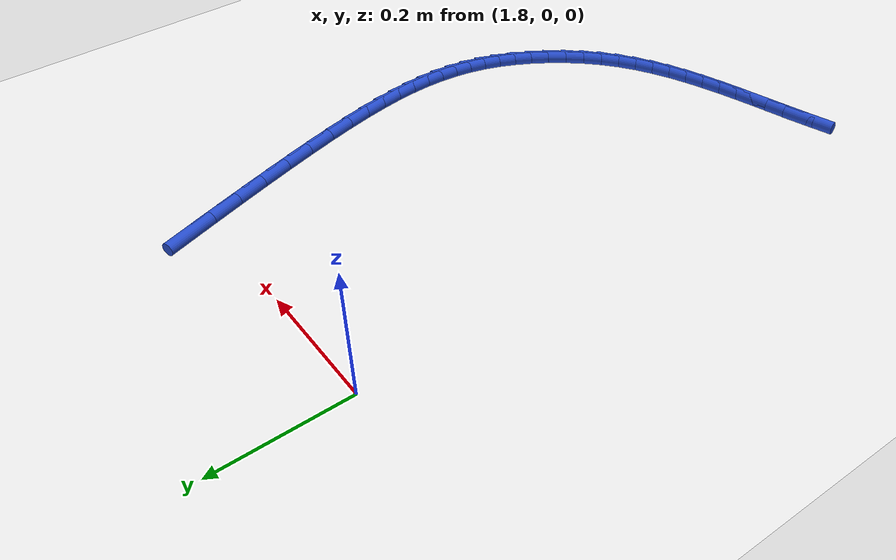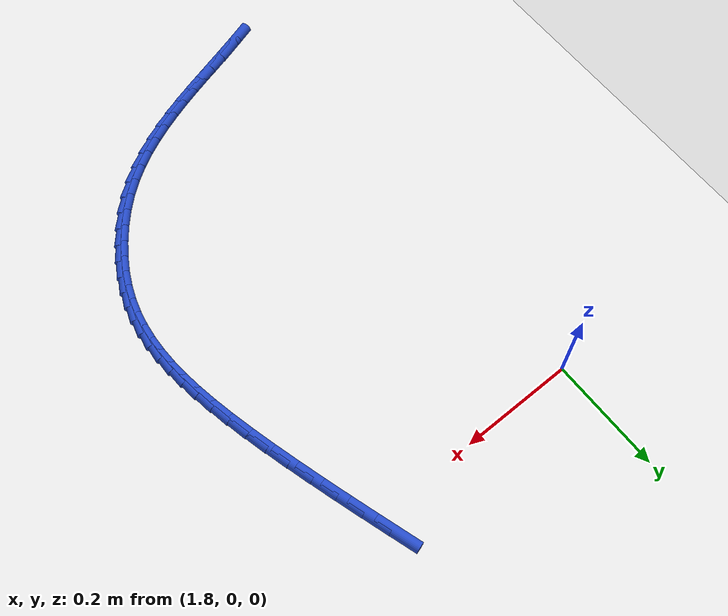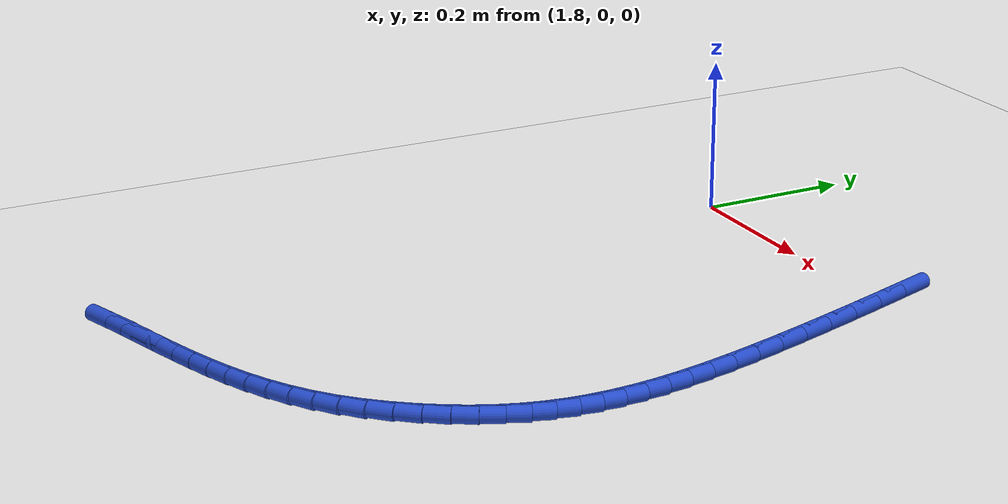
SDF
<sdf version="1.6">
 <world name="default">
  <model name="ground_plane">
   <static>1</static>
   <link name="link">
    <collision name="collision">
     <geometry><plane><normal>0 0 1</normal><size>100 100</size></plane></geometry>
     <surface><friction><ode><mu>100</mu><mu2>50</mu2></ode></friction></surface>
    </collision>
    <visual name="visual">
     <cast_shadows>0</cast_shadows>
     <geometry><plane><normal>0 0 1</normal><size>100 100</size></plane></geometry>
     <material>
      <script><uri>file://media/materials/scripts/gazebo.material</uri><name>Gazebo/WhiteGlow</name></script>
     </material>
    </visual>
   </link>
  </model>
  <model name="line">
   <link name="link_150">
    <pose>2.177378186438886 0.037771907014860565 0.01 0 1.57 -1.2565688783483167</pose>
    <collision name="collision">
     <geometry><cylinder><radius>0.01</radius><length>0.08</length></cylinder></geometry>
    </collision>
    <visual name="visual">
     <material>
      <script><name>Gazebo/Blue</name><uri>file://media/materials/scripts/gazebo.material</uri></script>
     </material>
     <geometry><cylinder><radius>0.01</radius><length>0.08</length></cylinder></geometry>
    </visual>
   </link>
   <link name="link_151">
    <pose>2.1927401477166435 -0.009496381822705638 0.01 0 1.57 -1.2625339412847834</pose>
    <collision name="collision">
     <geometry><cylinder><radius>0.01</radius><length>0.08</length></cylinder></geometry>
    </collision>
    <visual name="visual">
     <material>
      <script><name>Gazebo/Blue</name><uri>file://media/materials/scripts/gazebo.material</uri></script>
     </material>
     <geometry><cylinder><radius>0.01</radius><length>0.08</length></cylinder></geometry>
    </visual>
   </link>
   <link name="link_152">
    <pose>2.2076848268594134 -0.05643132222345608 0.01 0 1.57 -1.2699964345512602</pose>
    <collision name="collision">
     <geometry><cylinder><radius>0.01</radius><length>0.08</length></cylinder></geometry>
    </collision>
    <visual name="visual">
     <material>
      <script><name>Gazebo/Blue</name><uri>file://media/materials/scripts/gazebo.material</uri></script>
     </material>
     <geometry><cylinder><radius>0.01</radius><length>0.08</length></cylinder></geometry>
    </visual>
   </link>
   <link name="link_153">
    <pose>2.2219776159045135 -0.102505450847458 0.01 0 1.57 -1.2793285498213431</pose>
    <collision name="collision">
     <geometry><cylinder><radius>0.01</radius><length>0.08</length></cylinder></geometry>
    </collision>
    <visual name="visual">
     <material>
      <script><name>Gazebo/Blue</name><uri>file://media/materials/scripts/gazebo.material</uri></script>
     </material>
     <geometry><cylinder><radius>0.01</radius><length>0.08</length></cylinder></geometry>
    </visual>
   </link>
   <link name="link_154">
    <pose>2.2353839068892616 -0.1471913043547741 0.01 0 1.57 -1.2910888931422972</pose>
    <collision name="collision">
     <geometry><cylinder><radius>0.01</radius><length>0.08</length></cylinder></geometry>
    </collision>
    <visual name="visual">
     <material>
      <script><name>Gazebo/Blue</name><uri>file://media/materials/scripts/gazebo.material</uri></script>
     </material>
     <geometry><cylinder><radius>0.01</radius><length>0.08</length></cylinder></geometry>
    </visual>
   </link>
   <link name="link_155">
    <pose>2.2476690918509754 -0.18996141940546848 0.01 0 1.57 -1.3062080282308373</pose>
    <collision name="collision">
     <geometry><cylinder><radius>0.01</radius><length>0.08</length></cylinder></geometry>
    </collision>
    <visual name="visual">
     <material>
      <script><name>Gazebo/Blue</name><uri>file://media/materials/scripts/gazebo.material</uri></script>
     </material>
     <geometry><cylinder><radius>0.01</radius><length>0.08</length></cylinder></geometry>
    </visual>
   </link>
   <link name="link_156">
    <pose>2.258614735631049 -0.2303601065759916 0.01 0 1.57 -1.3262288701844052</pose>
    <collision name="collision">
     <geometry><cylinder><radius>0.01</radius><length>0.08</length></cylinder></geometry>
    </collision>
    <visual name="visual">
     <material>
      <script><name>Gazebo/Blue</name><uri>file://media/materials/scripts/gazebo.material</uri></script>
     </material>
     <geometry><cylinder><radius>0.01</radius><length>0.08</length></cylinder></geometry>
    </visual>
   </link>
   <link name="link_157">
    <pose>2.2681064382744607 -0.268393378320083 0.01 0 1.57 -1.3522229726255945</pose>
    <collision name="collision">
     <geometry><cylinder><radius>0.01</radius><length>0.08</length></cylinder></geometry>
    </collision>
    <visual name="visual">
     <material>
      <script><name>Gazebo/Blue</name><uri>file://media/materials/scripts/gazebo.material</uri></script>
     </material>
     <geometry><cylinder><radius>0.01</radius><length>0.08</length></cylinder></geometry>
    </visual>
   </link>
   <link name="link_158">
    <pose>2.276070989000401 -0.3042500421301174 0.01 0 1.57 -1.385054984742784</pose>
    <collision name="collision">
     <geometry><cylinder><radius>0.01</radius><length>0.08</length></cylinder></geometry>
    </collision>
    <visual name="visual">
     <material>
      <script><name>Gazebo/Blue</name><uri>file://media/materials/scripts/gazebo.material</uri></script>
     </material>
     <geometry><cylinder><radius>0.01</radius><length>0.08</length></cylinder></geometry>
    </visual>
   </link>
   <link name="link_159">
    <pose>2.2824352795492215 -0.33811936048110935 0.01 0 1.57 -1.4255604790030025</pose>
    <collision name="collision">
     <geometry><cylinder><radius>0.01</radius><length>0.08</length></cylinder></geometry>
    </collision>
    <visual name="visual">
     <material>
      <script><name>Gazebo/Blue</name><uri>file://media/materials/scripts/gazebo.material</uri></script>
     </material>
     <geometry><cylinder><radius>0.01</radius><length>0.08</length></cylinder></geometry>
    </visual>
   </link>
   <link name="link_160">
    <pose>2.287126201661272 -0.3701905958480727 0.01 0 1.57 -1.4744373652298832</pose>
    <collision name="collision">
     <geometry><cylinder><radius>0.01</radius><length>0.08</length></cylinder></geometry>
    </collision>
    <visual name="visual">
     <material>
      <script><name>Gazebo/Blue</name><uri>file://media/materials/scripts/gazebo.material</uri></script>
     </material>
     <geometry><cylinder><radius>0.01</radius><length>0.08</length></cylinder></geometry>
    </visual>
   </link>
   <link name="link_161">
    <pose>2.290070647076902 -0.40065301070602144 0.01 0 1.57 -1.5320846220062383</pose>
    <collision name="collision">
     <geometry><cylinder><radius>0.01</radius><length>0.08</length></cylinder></geometry>
    </collision>
    <visual name="visual">
     <material>
      <script><name>Gazebo/Blue</name><uri>file://media/materials/scripts/gazebo.material</uri></script>
     </material>
     <geometry><cylinder><radius>0.01</radius><length>0.08</length></cylinder></geometry>
    </visual>
   </link>
   <link name="link_162">
    <pose>2.2911955075364636 -0.42969586752997013 0.01 0 1.57 1.5431959283555121</pose>
    <collision name="collision">
     <geometry><cylinder><radius>0.01</radius><length>0.08</length></cylinder></geometry>
    </collision>
    <visual name="visual">
     <material>
      <script><name>Gazebo/Blue</name><uri>file://media/materials/scripts/gazebo.material</uri></script>
     </material>
     <geometry><cylinder><radius>0.01</radius><length>0.08</length></cylinder></geometry>
    </visual>
   </link>
   <link name="link_163">
    <pose>2.2904276747803056 -0.45750842879493264 0.01 0 1.57 1.4690392454744041</pose>
    <collision name="collision">
     <geometry><cylinder><radius>0.01</radius><length>0.08</length></cylinder></geometry>
    </collision>
    <visual name="visual">
     <material>
      <script><name>Gazebo/Blue</name><uri>file://media/materials/scripts/gazebo.material</uri></script>
     </material>
     <geometry><cylinder><radius>0.01</radius><length>0.08</length></cylinder></geometry>
    </visual>
   </link>
   <link name="link_164">
    <pose>2.287694040548779 -0.48427995697592313 0.01 0 1.57 1.3887081769607825</pose>
    <collision name="collision">
     <geometry><cylinder><radius>0.01</radius><length>0.08</length></cylinder></geometry>
    </collision>
    <visual name="visual">
     <material>
      <script><name>Gazebo/Blue</name><uri>file://media/materials/scripts/gazebo.material</uri></script>
     </material>
     <geometry><cylinder><radius>0.01</radius><length>0.08</length></cylinder></geometry>
    </visual>
   </link>
   <link name="link_165">
    <pose>2.2829214965822353 -0.5101997145479559 0.01 0 1.57 1.3046835374370898</pose>
    <collision name="collision">
     <geometry><cylinder><radius>0.01</radius><length>0.08</length></cylinder></geometry>
    </collision>
    <visual name="visual">
     <material>
      <script><name>Gazebo/Blue</name><uri>file://media/materials/scripts/gazebo.material</uri></script>
     </material>
     <geometry><cylinder><radius>0.01</radius><length>0.08</length></cylinder></geometry>
    </visual>
   </link>
   <link name="link_166">
    <pose>2.2760369346210236 -0.5354569639860448 0.01 0 1.57 1.219984052009317</pose>
    <collision name="collision">
     <geometry><cylinder><radius>0.01</radius><length>0.08</length></cylinder></geometry>
    </collision>
    <visual name="visual">
     <material>
      <script><name>Gazebo/Blue</name><uri>file://media/materials/scripts/gazebo.material</uri></script>
     </material>
     <geometry><cylinder><radius>0.01</radius><length>0.08</length></cylinder></geometry>
    </visual>
   </link>
   <link name="link_167">
    <pose>2.266967246405494 -0.5602409677652042 0.01 0 1.57 1.1377083603555451</pose>
    <collision name="collision">
     <geometry><cylinder><radius>0.01</radius><length>0.08</length></cylinder></geometry>
    </collision>
    <visual name="visual">
     <material>
      <script><name>Gazebo/Blue</name><uri>file://media/materials/scripts/gazebo.material</uri></script>
     </material>
     <geometry><cylinder><radius>0.01</radius><length>0.08</length></cylinder></geometry>
    </visual>
   </link>
   <link name="link_168">
    <pose>2.2556393236759975 -0.5847409883604482 0.01 0 1.57 1.060548293669689</pose>
    <collision name="collision">
     <geometry><cylinder><radius>0.01</radius><length>0.08</length></cylinder></geometry>
    </collision>
    <visual name="visual">
     <material>
      <script><name>Gazebo/Blue</name><uri>file://media/materials/scripts/gazebo.material</uri></script>
     </material>
     <geometry><cylinder><radius>0.01</radius><length>0.08</length></cylinder></geometry>
    </visual>
   </link>
   <link name="link_169">
    <pose>2.241980058467533 -0.6091462875438887 0.01 0 1.57 0.9895238570014566</pose>
    <collision name="collision">
     <geometry><cylinder><radius>0.01</radius><length>0.08</length></cylinder></geometry>
    </collision>
    <visual name="visual">
     <material>
      <script><name>Gazebo/Blue</name><uri>file://media/materials/scripts/gazebo.material</uri></script>
     </material>
     <geometry><cylinder><radius>0.01</radius><length>0.08</length></cylinder></geometry>
    </visual>
   </link>
   <link name="link_170">
    <pose>2.225973457447147 -0.6335098762969096 0.01 0 1.57 0.9203623868774888</pose>
    <collision name="collision">
     <geometry><cylinder><radius>0.01</radius><length>0.08</length></cylinder></geometry>
    </collision>
    <visual name="visual">
     <material>
      <script><name>Gazebo/Blue</name><uri>file://media/materials/scripts/gazebo.material</uri></script>
     </material>
     <geometry><cylinder><radius>0.01</radius><length>0.08</length></cylinder></geometry>
    </visual>
   </link>
   <link name="link_171">
    <pose>2.207820251549267 -0.6573677553052854 0.01 0 1.57 0.8487952375971233</pose>
    <collision name="collision">
     <geometry><cylinder><radius>0.01</radius><length>0.08</length></cylinder></geometry>
    </collision>
    <visual name="visual">
     <material>
      <script><name>Gazebo/Blue</name><uri>file://media/materials/scripts/gazebo.material</uri></script>
     </material>
     <geometry><cylinder><radius>0.01</radius><length>0.08</length></cylinder></geometry>
    </visual>
   </link>
   <link name="link_172">
    <pose>2.1877725684097804 -0.6801333149715065 0.01 0 1.57 0.7712932296858065</pose>
    <collision name="collision">
     <geometry><cylinder><radius>0.01</radius><length>0.08</length></cylinder></geometry>
    </collision>
    <visual name="visual">
     <material>
      <script><name>Gazebo/Blue</name><uri>file://media/materials/scripts/gazebo.material</uri></script>
     </material>
     <geometry><cylinder><radius>0.01</radius><length>0.08</length></cylinder></geometry>
    </visual>
   </link>
   <link name="link_173">
    <pose>2.166082535664577 -0.7012199456980642 0.01 0 1.57 0.6870396033574212</pose>
    <collision name="collision">
     <geometry><cylinder><radius>0.01</radius><length>0.08</length></cylinder></geometry>
    </collision>
    <visual name="visual">
     <material>
      <script><name>Gazebo/Blue</name><uri>file://media/materials/scripts/gazebo.material</uri></script>
     </material>
     <geometry><cylinder><radius>0.01</radius><length>0.08</length></cylinder></geometry>
    </visual>
   </link>
   <link name="link_174">
    <pose>2.142984954990692 -0.7201685371225521 0.01 0 1.57 0.6066689730056751</pose>
    <collision name="collision">
     <geometry><cylinder><radius>0.01</radius><length>0.08</length></cylinder></geometry>
    </collision>
    <visual name="visual">
     <material>
      <script><name>Gazebo/Blue</name><uri>file://media/materials/scripts/gazebo.material</uri></script>
     </material>
     <geometry><cylinder><radius>0.01</radius><length>0.08</length></cylinder></geometry>
    </visual>
   </link>
   <link name="link_175">
    <pose>2.118640884897826 -0.7370626442269977 0.01 0 1.57 0.5345644038278002</pose>
    <collision name="collision">
     <geometry><cylinder><radius>0.01</radius><length>0.08</length></cylinder></geometry>
    </collision>
    <visual name="visual">
     <material>
      <script><name>Gazebo/Blue</name><uri>file://media/materials/scripts/gazebo.material</uri></script>
     </material>
     <geometry><cylinder><radius>0.01</radius><length>0.08</length></cylinder></geometry>
    </visual>
   </link>
   <link name="link_176">
    <pose>2.093191768091067 -0.7521301718735717 0.01 0 1.57 0.4715664886628932</pose>
    <collision name="collision">
     <geometry><cylinder><radius>0.01</radius><length>0.08</length></cylinder></geometry>
    </collision>
    <visual name="visual">
     <material>
      <script><name>Gazebo/Blue</name><uri>file://media/materials/scripts/gazebo.material</uri></script>
     </material>
     <geometry><cylinder><radius>0.01</radius><length>0.08</length></cylinder></geometry>
    </visual>
   </link>
   <link name="link_177">
    <pose>2.0667790471120977 -0.7655990261269464 0.01 0 1.57 0.4180309841029311</pose>
    <collision name="collision">
     <geometry><cylinder><radius>0.01</radius><length>0.08</length></cylinder></geometry>
    </collision>
    <visual name="visual">
     <material>
      <script><name>Gazebo/Blue</name><uri>file://media/materials/scripts/gazebo.material</uri></script>
     </material>
     <geometry><cylinder><radius>0.01</radius><length>0.08</length></cylinder></geometry>
    </visual>
   </link>
   <link name="link_178">
    <pose>2.0395441645025967 -0.7776971130517943 0.01 0 1.57 0.3739730305123005</pose>
    <collision name="collision">
     <geometry><cylinder><radius>0.01</radius><length>0.08</length></cylinder></geometry>
    </collision>
    <visual name="visual">
     <material>
      <script><name>Gazebo/Blue</name><uri>file://media/materials/scripts/gazebo.material</uri></script>
     </material>
     <geometry><cylinder><radius>0.01</radius><length>0.08</length></cylinder></geometry>
    </visual>
   </link>
   <link name="link_179">
    <pose>2.011628562804244 -0.788652338712787 0.01 0 1.57 0.33921049365990835</pose>
    <collision name="collision">
     <geometry><cylinder><radius>0.01</radius><length>0.08</length></cylinder></geometry>
    </collision>
    <visual name="visual">
     <material>
      <script><name>Gazebo/Blue</name><uri>file://media/materials/scripts/gazebo.material</uri></script>
     </material>
     <geometry><cylinder><radius>0.01</radius><length>0.08</length></cylinder></geometry>
    </visual>
   </link>
   <link name="link_180">
    <pose>1.98317368455872 -0.7986926091745967 0.01 0 1.57 0.31348218855939186</pose>
    <collision name="collision">
     <geometry><cylinder><radius>0.01</radius><length>0.08</length></cylinder></geometry>
    </collision>
    <visual name="visual">
     <material>
      <script><name>Gazebo/Blue</name><uri>file://media/materials/scripts/gazebo.material</uri></script>
     </material>
     <geometry><cylinder><radius>0.01</radius><length>0.08</length></cylinder></geometry>
    </visual>
   </link>
   <link name="link_181">
    <pose>1.9543209723077053 -0.8080458305018958 0.01 0 1.57 0.29653418048749675</pose>
    <collision name="collision">
     <geometry><cylinder><radius>0.01</radius><length>0.08</length></cylinder></geometry>
    </collision>
    <visual name="visual">
     <material>
      <script><name>Gazebo/Blue</name><uri>file://media/materials/scripts/gazebo.material</uri></script>
     </material>
     <geometry><cylinder><radius>0.01</radius><length>0.08</length></cylinder></geometry>
    </visual>
   </link>
   <link name="link_182">
    <pose>1.9252118685928796 -0.816939908759356 0.01 0 1.57 0.28817695046343933</pose>
    <collision name="collision">
     <geometry><cylinder><radius>0.01</radius><length>0.08</length></cylinder></geometry>
    </collision>
    <visual name="visual">
     <material>
      <script><name>Gazebo/Blue</name><uri>file://media/materials/scripts/gazebo.material</uri></script>
     </material>
     <geometry><cylinder><radius>0.01</radius><length>0.08</length></cylinder></geometry>
    </visual>
   </link>
   <link name="link_183">
    <pose>1.8959878159559234 -0.8256027500116497 0.01 0 1.57 0.28831932716820335</pose>
    <collision name="collision">
     <geometry><cylinder><radius>0.01</radius><length>0.08</length></cylinder></geometry>
    </collision>
    <visual name="visual">
     <material>
      <script><name>Gazebo/Blue</name><uri>file://media/materials/scripts/gazebo.material</uri></script>
     </material>
     <geometry><cylinder><radius>0.01</radius><length>0.08</length></cylinder></geometry>
    </visual>
   </link>
   <link name="link_184">
    <pose>1.8667902569385173 -0.8342622603234486 0.01 0 1.57 0.29698440552875666</pose>
    <collision name="collision">
     <geometry><cylinder><radius>0.01</radius><length>0.08</length></cylinder></geometry>
    </collision>
    <visual name="visual">
     <material>
      <script><name>Gazebo/Blue</name><uri>file://media/materials/scripts/gazebo.material</uri></script>
     </material>
     <geometry><cylinder><radius>0.01</radius><length>0.08</length></cylinder></geometry>
    </visual>
   </link>
   <link name="link_185">
    <pose>1.8377606340823407 -0.8431463457594255 0.01 0 1.57 0.31431022703657874</pose>
    <collision name="collision">
     <geometry><cylinder><radius>0.01</radius><length>0.08</length></cylinder></geometry>
    </collision>
    <visual name="visual">
     <material>
      <script><name>Gazebo/Blue</name><uri>file://media/materials/scripts/gazebo.material</uri></script>
     </material>
     <geometry><cylinder><radius>0.01</radius><length>0.08</length></cylinder></geometry>
    </visual>
   </link>
  </model>
 </world>
</sdf>
